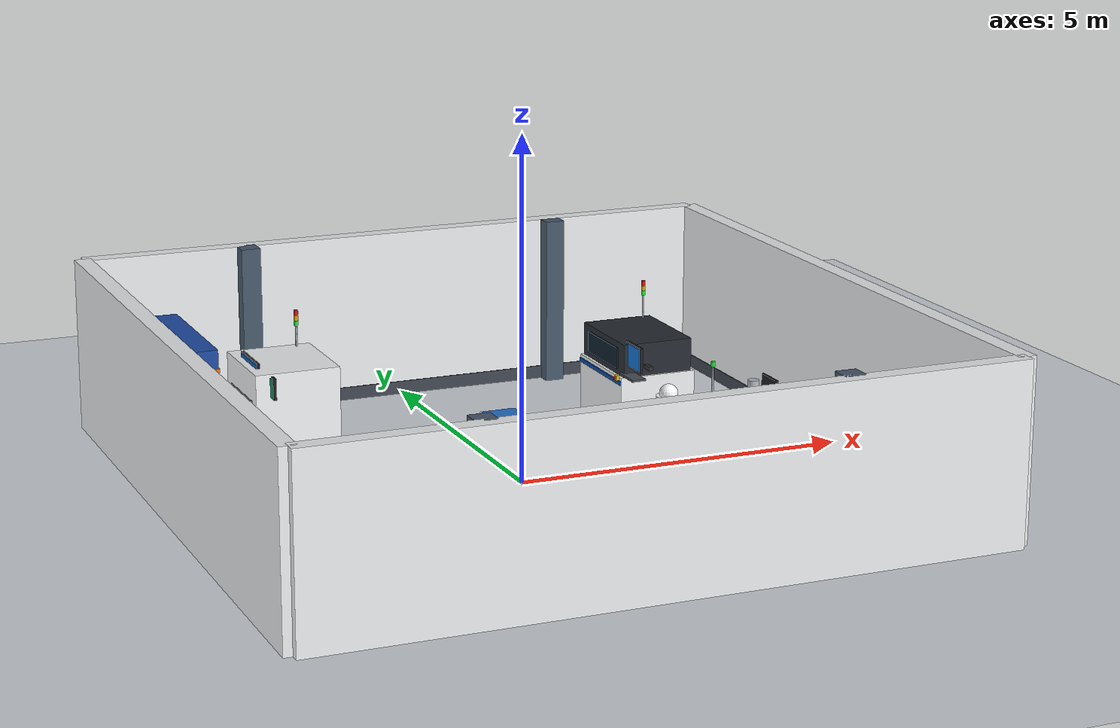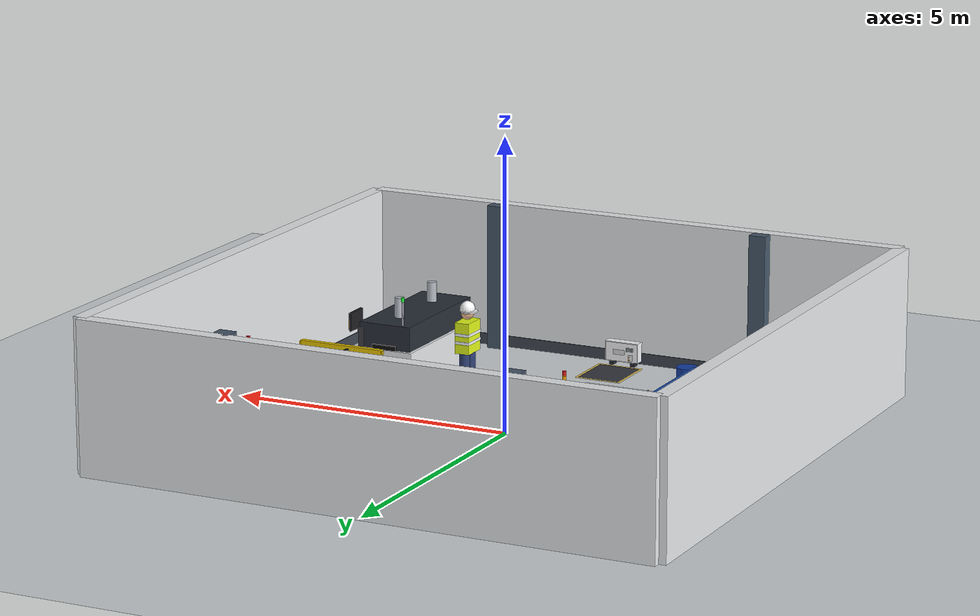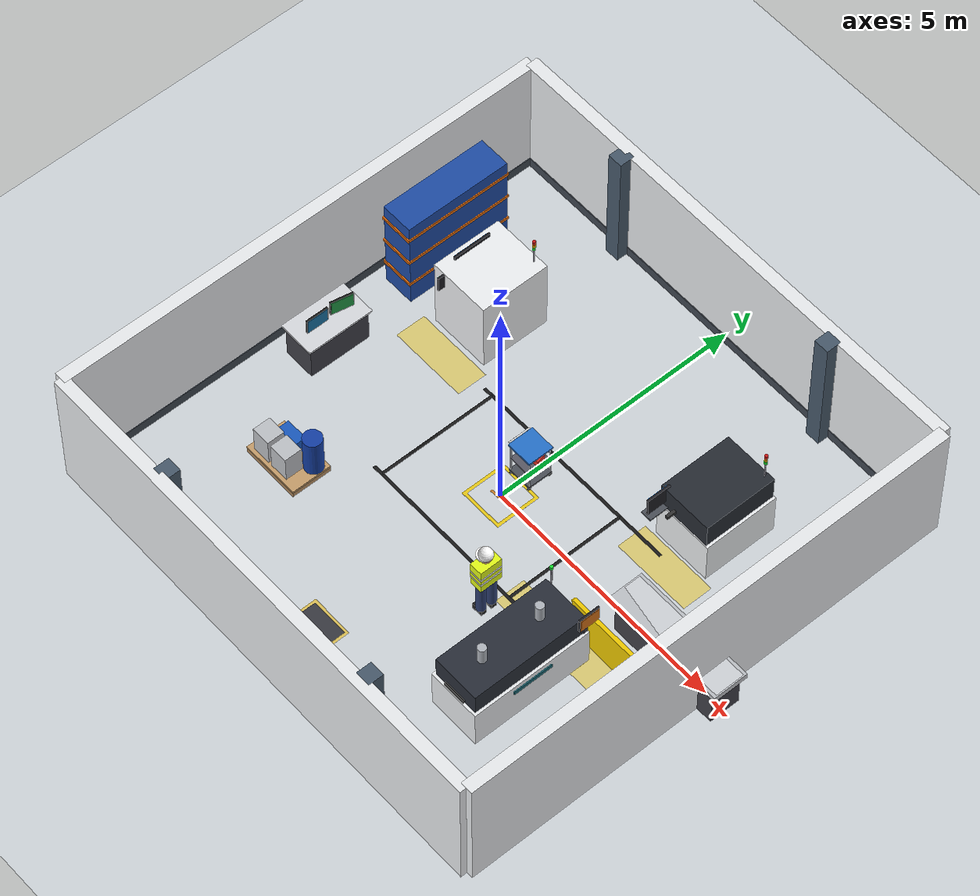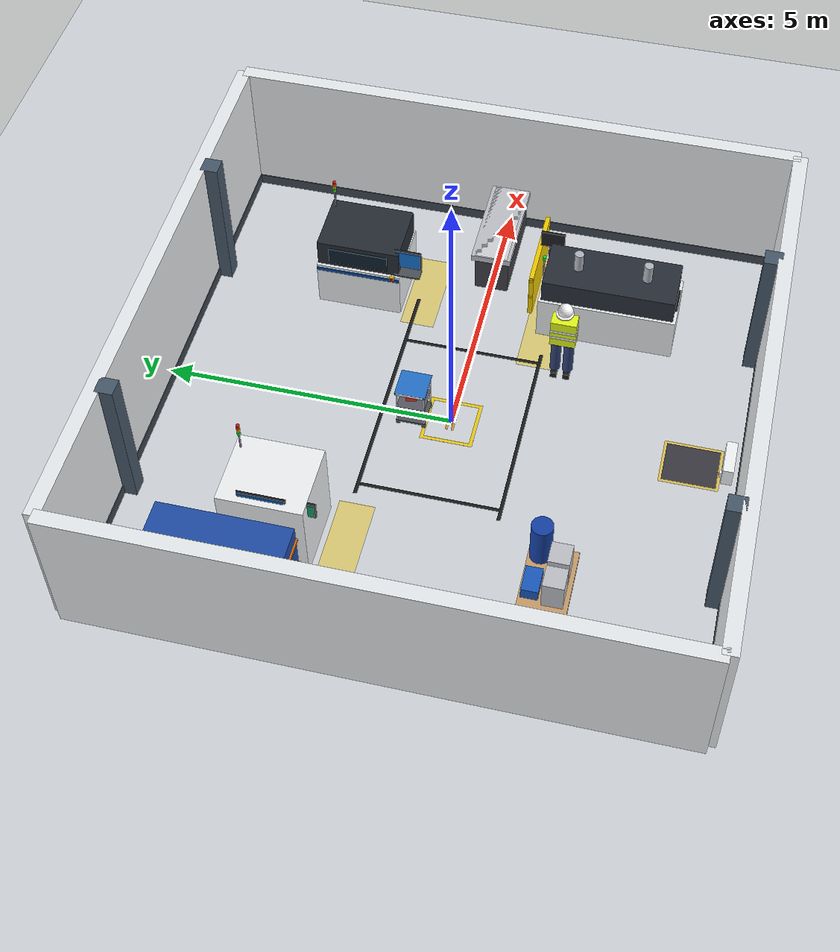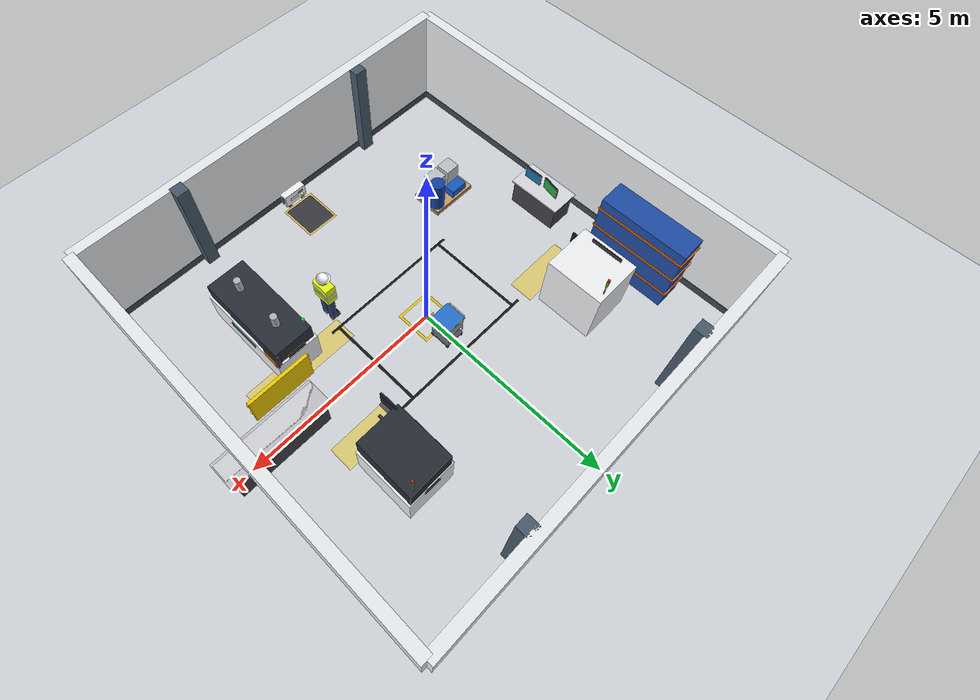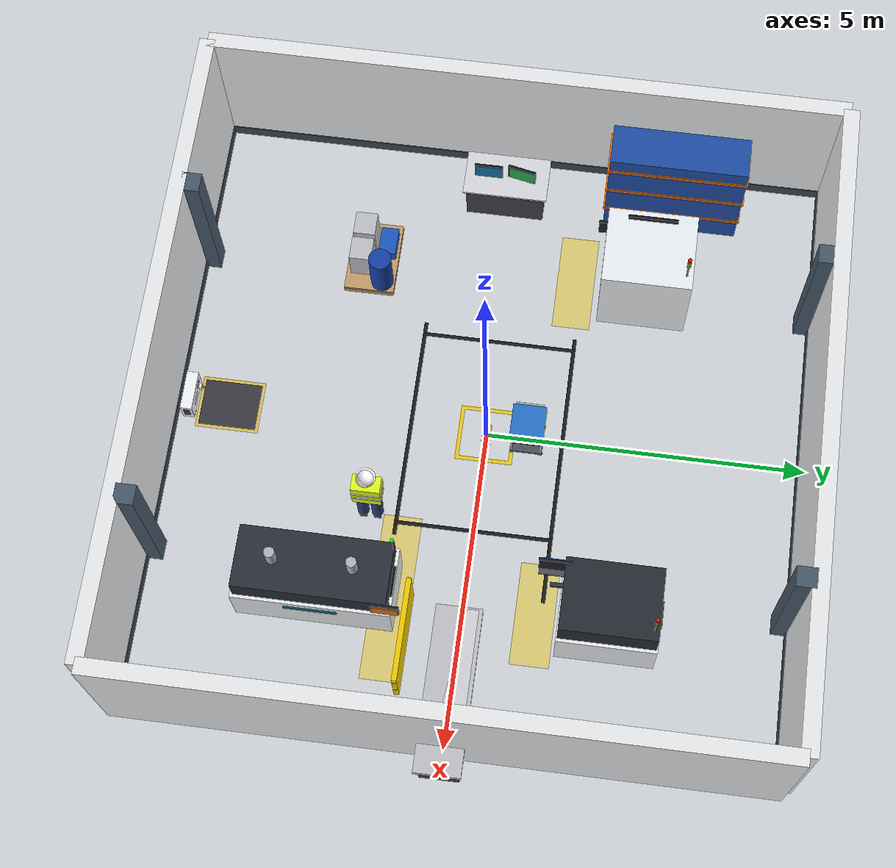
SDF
<?xml version="1.0" ?>
<sdf version="1.6">
  <world name="factory_workshop">

    <!--  ATELIER INDUSTRIEL FUBA - FABRICATION ET INSPECTION DE PCB   -->
    <!--  Projet RAIA 01.26 | Environnement Gazebo réaliste            -->
    <!--  Remplacement des 3 formes géométriques primitives            -->

    <!-- Optimisation graphique pour fluidité maximale sous WSL2 (FPS élevé) -->
    <scene>
      <shadows>false</shadows>
      <grid>true</grid>
    </scene>

    <!-- Plugin ROS2 Gazebo State pour contrôle d'entités dynamiques (/set_entity_state) -->
    <plugin name="gazebo_ros_state" filename="libgazebo_ros_state.so">
      <ros>
        <namespace>/</namespace>
      </ros>
      <update_rate>50.0</update_rate>
    </plugin>

    <!-- Éclairage solaire autonome (sans ombres pour gain FPS) -->
    <light type="directional" name="sun">
      <cast_shadows>false</cast_shadows>
      <pose>0 0 12 0 0 0</pose>
      <diffuse>0.85 0.85 0.88 1</diffuse>
      <specular>0.25 0.25 0.25 1</specular>
      <attenuation>
        <range>1000</range>
        <constant>0.9</constant>
        <linear>0.01</linear>
        <quadratic>0.001</quadratic>
      </attenuation>
      <direction>-0.4 0.2 -0.9</direction>
    </light>

    <!-- Éclairage d'ambiance d'atelier (néons industriels plafonniers) -->
    <light type="point" name="overhead_lamp_1">
      <cast_shadows>false</cast_shadows>
      <pose>-2 2 4.5 0 0 0</pose>
      <diffuse>0.5 0.52 0.55 1</diffuse>
      <specular>0.1 0.1 0.1 1</specular>
      <attenuation>
        <range>20</range>
        <constant>0.5</constant>
        <linear>0.05</linear>
        <quadratic>0.01</quadratic>
      </attenuation>
    </light>

    <light type="point" name="overhead_lamp_2">
      <cast_shadows>false</cast_shadows>
      <pose>2 -2 4.5 0 0 0</pose>
      <diffuse>0.5 0.52 0.55 1</diffuse>
      <specular>0.1 0.1 0.1 1</specular>
      <attenuation>
        <range>20</range>
        <constant>0.5</constant>
        <linear>0.05</linear>
        <quadratic>0.01</quadratic>
      </attenuation>
    </light>

    <!-- Sol de l'atelier : Résine époxy industrielle grise -->
    <model name="ground_plane">
      <static>true</static>
      <link name="link">
        <collision name="collision">
          <geometry>
            <plane>
              <normal>0 0 1</normal>
              <size>100 100</size>
            </plane>
          </geometry>
          <surface>
            <friction>
              <ode>
                <mu>100</mu>
                <mu2>50</mu2>
              </ode>
            </friction>
          </surface>
        </collision>
        <visual name="visual">
          <cast_shadows>false</cast_shadows>
          <geometry>
            <plane>
              <normal>0 0 1</normal>
              <size>100 100</size>
            </plane>
          </geometry>
          <material>
            <ambient>0.82 0.84 0.86 1</ambient>
            <diffuse>0.82 0.84 0.86 1</diffuse>
            <specular>0.3 0.3 0.32 1</specular>
          </material>
        </visual>
      </link>
    </model>

    <!-- Physique ODE optimisée temps réel -->
    <physics type="ode">
      <real_time_update_rate>250.0</real_time_update_rate>
      <max_step_size>0.004</max_step_size>
      <real_time_factor>1.0</real_time_factor>
    </physics>

    <!--  ENCLOS DE L'ATELIER (MURS PERIMETRIQUES 10m x 10m x 2.6m)     -->

    <!-- Mur Nord -->
    <model name="wall_north">
      <static>true</static>
      <pose>0 5 1.3 0 0 0</pose>
      <link name="link">
        <collision name="collision">
          <geometry><box><size>10 0.25 2.6</size></box></geometry>
        </collision>
        <visual name="wall_face">
          <geometry><box><size>10 0.25 2.6</size></box></geometry>
          <material>
            <ambient>0.92 0.93 0.94 1</ambient>
            <diffuse>0.92 0.93 0.94 1</diffuse>
          </material>
        </visual>
        <visual name="baseboard">
          <pose>0 -0.13 -1.2 0 0 0</pose>
          <geometry><box><size>10 0.02 0.2</size></box></geometry>
          <material><ambient>0.25 0.28 0.32 1</ambient><diffuse>0.25 0.28 0.32 1</diffuse></material>
        </visual>
      </link>
    </model>

    <!-- Mur Sud -->
    <model name="wall_south">
      <static>true</static>
      <pose>0 -5 1.3 0 0 0</pose>
      <link name="link">
        <collision name="collision">
          <geometry><box><size>10 0.25 2.6</size></box></geometry>
        </collision>
        <visual name="wall_face">
          <geometry><box><size>10 0.25 2.6</size></box></geometry>
          <material>
            <ambient>0.92 0.93 0.94 1</ambient>
            <diffuse>0.92 0.93 0.94 1</diffuse>
          </material>
        </visual>
        <visual name="baseboard">
          <pose>0 0.13 -1.2 0 0 0</pose>
          <geometry><box><size>10 0.02 0.2</size></box></geometry>
          <material><ambient>0.25 0.28 0.32 1</ambient><diffuse>0.25 0.28 0.32 1</diffuse></material>
        </visual>
      </link>
    </model>

    <!-- Mur Est -->
    <model name="wall_east">
      <static>true</static>
      <pose>5 0 1.3 0 0 0</pose>
      <link name="link">
        <collision name="collision">
          <geometry><box><size>0.25 10 2.6</size></box></geometry>
        </collision>
        <visual name="wall_face">
          <geometry><box><size>0.25 10 2.6</size></box></geometry>
          <material>
            <ambient>0.92 0.93 0.94 1</ambient>
            <diffuse>0.92 0.93 0.94 1</diffuse>
          </material>
        </visual>
        <visual name="baseboard">
          <pose>-0.13 0 -1.2 0 0 0</pose>
          <geometry><box><size>0.02 10 0.2</size></box></geometry>
          <material><ambient>0.25 0.28 0.32 1</ambient><diffuse>0.25 0.28 0.32 1</diffuse></material>
        </visual>
      </link>
    </model>

    <!-- Mur Ouest -->
    <model name="wall_west">
      <static>true</static>
      <pose>-5 0 1.3 0 0 0</pose>
      <link name="link">
        <collision name="collision">
          <geometry><box><size>0.25 10 2.6</size></box></geometry>
        </collision>
        <visual name="wall_face">
          <geometry><box><size>0.25 10 2.6</size></box></geometry>
          <material>
            <ambient>0.92 0.93 0.94 1</ambient>
            <diffuse>0.92 0.93 0.94 1</diffuse>
          </material>
        </visual>
        <visual name="baseboard">
          <pose>0.13 0 -1.2 0 0 0</pose>
          <geometry><box><size>0.02 10 0.2</size></box></geometry>
          <material><ambient>0.25 0.28 0.32 1</ambient><diffuse>0.25 0.28 0.32 1</diffuse></material>
        </visual>
      </link>
    </model>

    <!-- Piliers structuraux IPN de l'atelier -->
    <model name="pillar_nw">
      <static>true</static>
      <pose>-2.5 4.8 1.3 0 0 0</pose>
      <link name="link">
        <collision name="collision"><geometry><box><size>0.3 0.3 2.6</size></box></geometry></collision>
        <visual name="visual">
          <geometry><box><size>0.3 0.3 2.6</size></box></geometry>
          <material><ambient>0.28 0.35 0.42 1</ambient><diffuse>0.28 0.35 0.42 1</diffuse></material>
        </visual>
      </link>
    </model>

    <model name="pillar_ne">
      <static>true</static>
      <pose>2.5 4.8 1.3 0 0 0</pose>
      <link name="link">
        <collision name="collision"><geometry><box><size>0.3 0.3 2.6</size></box></geometry></collision>
        <visual name="visual">
          <geometry><box><size>0.3 0.3 2.6</size></box></geometry>
          <material><ambient>0.28 0.35 0.42 1</ambient><diffuse>0.28 0.35 0.42 1</diffuse></material>
        </visual>
      </link>
    </model>

    <model name="pillar_sw">
      <static>true</static>
      <pose>-2.5 -4.8 1.3 0 0 0</pose>
      <link name="link">
        <collision name="collision"><geometry><box><size>0.3 0.3 2.6</size></box></geometry></collision>
        <visual name="visual">
          <geometry><box><size>0.3 0.3 2.6</size></box></geometry>
          <material><ambient>0.28 0.35 0.42 1</ambient><diffuse>0.28 0.35 0.42 1</diffuse></material>
        </visual>
      </link>
    </model>

    <model name="pillar_se">
      <static>true</static>
      <pose>2.5 -4.8 1.3 0 0 0</pose>
      <link name="link">
        <collision name="collision"><geometry><box><size>0.3 0.3 2.6</size></box></geometry></collision>
        <visual name="visual">
          <geometry><box><size>0.3 0.3 2.6</size></box></geometry>
          <material><ambient>0.28 0.35 0.42 1</ambient><diffuse>0.28 0.35 0.42 1</diffuse></material>
        </visual>
      </link>
    </model>

    <!--  STATION 1 : SERIGRAPHIE & CHARGEMENT (MPM MOMENTUM II ELITE) -->
    <!--  Remplace l'ancien obstacle rectangulaire pcb_station_1        -->
    <!--  Photo Fig. 20 (page 43 du rapport RAIA)                      -->
    <model name="station_mpm_momentum_serigraphie">
      <static>true</static>
      <pose>2.8 2.2 0 0 0 -1.5708</pose>
      <link name="link">
        <!-- Boîte de collision globale exacte pour le LiDAR et la physique -->
        <collision name="collision_base">
          <pose>0 0 0.72 0 0 0</pose>
          <geometry><box><size>1.5 1.25 1.45</size></box></geometry>
        </collision>

        <!-- Bâti inférieur machine blanc industriel -->
        <visual name="base_chassis">
          <pose>0 0 0.45 0 0 0</pose>
          <geometry><box><size>1.5 1.2 0.9</size></box></geometry>
          <material><ambient>0.93 0.94 0.95 1</ambient><diffuse>0.93 0.94 0.95 1</diffuse></material>
        </visual>

        <!-- Capot supérieur avec chanfrein noir/anthracite -->
        <visual name="upper_hood">
          <pose>0 0 1.15 0 0 0</pose>
          <geometry><box><size>1.46 1.1 0.5</size></box></geometry>
          <material><ambient>0.15 0.17 0.2 1</ambient><diffuse>0.15 0.17 0.2 1</diffuse></material>
        </visual>

        <!-- Fenêtre d'inspection sérigraphie en verre teinté -->
        <visual name="inspection_glass">
          <pose>0 -0.56 1.15 0 0 0</pose>
          <geometry><box><size>1.05 0.03 0.32</size></box></geometry>
          <material><ambient>0.05 0.12 0.18 1</ambient><diffuse>0.05 0.12 0.18 1</diffuse><specular>0.8 0.8 0.9 1</specular></material>
        </visual>

        <!-- Bandeau d'accent bleu MPM -->
        <visual name="mpm_accent_stripe">
          <pose>0 -0.61 0.82 0 0 0</pose>
          <geometry><box><size>1.48 0.02 0.06</size></box></geometry>
          <material><ambient>0.05 0.3 0.65 1</ambient><diffuse>0.05 0.3 0.65 1</diffuse></material>
        </visual>

        <!-- Console opérateur latérale (bras support) -->
        <visual name="screen_arm">
          <pose>0.82 -0.2 1.05 0 0 0</pose>
          <geometry><box><size>0.2 0.06 0.06</size></box></geometry>
          <material><ambient>0.2 0.2 0.2 1</ambient><diffuse>0.2 0.2 0.2 1</diffuse></material>
        </visual>

        <!-- Écran de contrôle MPM Momentum -->
        <visual name="operator_screen_frame">
          <pose>0.88 -0.45 1.25 0 0 0</pose>
          <geometry><box><size>0.48 0.04 0.38</size></box></geometry>
          <material><ambient>0.12 0.12 0.14 1</ambient><diffuse>0.12 0.12 0.14 1</diffuse></material>
        </visual>
        <visual name="operator_screen_display">
          <pose>0.88 -0.48 1.25 0 0 0</pose>
          <geometry><box><size>0.44 0.01 0.34</size></box></geometry>
          <material><ambient>0.08 0.45 0.82 1</ambient><diffuse>0.08 0.45 0.82 1</diffuse><emissive>0.05 0.2 0.4 1</emissive></material>
        </visual>
        <visual name="keyboard_tray">
          <pose>0.88 -0.48 0.95 0 0 0</pose>
          <geometry><box><size>0.46 0.22 0.03</size></box></geometry>
          <material><ambient>0.3 0.32 0.35 1</ambient><diffuse>0.3 0.32 0.35 1</diffuse></material>
        </visual>

        <!-- Bouton Arrêt d'Urgence (E-stop) -->
        <visual name="estop_box">
          <pose>0.62 -0.62 0.88 0 0 0</pose>
          <geometry><box><size>0.08 0.04 0.08</size></box></geometry>
          <material><ambient>0.95 0.8 0.0 1</ambient><diffuse>0.95 0.8 0.0 1</diffuse></material>
        </visual>
        <visual name="estop_mushroom">
          <pose>0.62 -0.65 0.88 1.5708 0 0</pose>
          <geometry><cylinder><radius>0.025</radius><length>0.03</length></cylinder></geometry>
          <material><ambient>0.85 0.05 0.05 1</ambient><diffuse>0.85 0.05 0.05 1</diffuse></material>
        </visual>

        <!-- Colonne lumineuse Andon (Mât) -->
        <visual name="andon_pole">
          <pose>-0.65 0.4 1.6 0 0 0</pose>
          <geometry><cylinder><radius>0.015</radius><length>0.4</length></cylinder></geometry>
          <material><ambient>0.6 0.6 0.65 1</ambient><diffuse>0.6 0.6 0.65 1</diffuse></material>
        </visual>
        <!-- Andon Rouge -->
        <visual name="andon_red">
          <pose>-0.65 0.4 1.95 0 0 0</pose>
          <geometry><cylinder><radius>0.03</radius><length>0.07</length></cylinder></geometry>
          <material><ambient>0.8 0.1 0.1 1</ambient><diffuse>0.8 0.1 0.1 1</diffuse></material>
        </visual>
        <!-- Andon Orange -->
        <visual name="andon_amber">
          <pose>-0.65 0.4 1.87 0 0 0</pose>
          <geometry><cylinder><radius>0.03</radius><length>0.07</length></cylinder></geometry>
          <material><ambient>0.9 0.6 0.0 1</ambient><diffuse>0.9 0.6 0.0 1</diffuse></material>
        </visual>
        <!-- Andon Vert actif -->
        <visual name="andon_green">
          <pose>-0.65 0.4 1.79 0 0 0</pose>
          <geometry><cylinder><radius>0.03</radius><length>0.07</length></cylinder></geometry>
          <material><ambient>0.1 0.9 0.2 1</ambient><diffuse>0.1 0.9 0.2 1</diffuse><emissive>0.2 0.8 0.3 1</emissive></material>
        </visual>

        <!-- Convoyeur d'interface de transfert PCB -->
        <visual name="pcb_input_slot">
          <pose>-0.76 0 0.85 0 0 0</pose>
          <geometry><box><size>0.03 0.4 0.1</size></box></geometry>
          <material><ambient>0.05 0.05 0.05 1</ambient><diffuse>0.05 0.05 0.05 1</diffuse></material>
        </visual>
      </link>
    </model>

    <!--  STATION 2 : TESTEUR SONDES MOBILES & VISION IA (SPEA 4050)   -->
    <!--  Remplace l'ancien obstacle carré/rectangle pcb_station_2      -->
    <!--  Banc d'inspection optique temps réel YOLOv8 (rapport RAIA)    -->
    <model name="station_spea_4050_testeur_ia">
      <static>true</static>
      <pose>-2.8 2.2 0 0 0 -1.5708</pose>
      <link name="link">
        <!-- Boîte de collision globale pour physique et LiDAR -->
        <collision name="collision_base">
          <pose>0 0 0.8 0 0 0</pose>
          <geometry><box><size>1.5 1.35 1.6</size></box></geometry>
        </collision>

        <!-- Bâti vertical principal SPEA 4050 blanc crème -->
        <visual name="spea_main_body">
          <pose>0 0 0.77 0 0 0</pose>
          <geometry><box><size>1.4 1.25 1.55</size></box></geometry>
          <material><ambient>0.94 0.95 0.96 1</ambient><diffuse>0.94 0.95 0.96 1</diffuse></material>
        </visual>

        <!-- Chambre centrale de test à sondes mobiles -->
        <visual name="test_chamber_recess">
          <pose>0 -0.55 0.8 0 0 0</pose>
          <geometry><box><size>1.05 0.16 0.65</size></box></geometry>
          <material><ambient>0.12 0.14 0.16 1</ambient><diffuse>0.12 0.14 0.16 1</diffuse></material>
        </visual>

        <!-- Fixture / Plateau de circuit imprimé sous test (vert PCB) -->
        <visual name="pcb_under_test">
          <pose>0 -0.45 0.65 0 0 0</pose>
          <geometry><box><size>0.6 0.35 0.03</size></box></geometry>
          <material><ambient>0.1 0.55 0.25 1</ambient><diffuse>0.1 0.55 0.25 1</diffuse></material>
        </visual>

        <!-- Pont de mesure robotisé (portique sondes volantes) -->
        <visual name="flying_probes_gantry">
          <pose>0 -0.45 0.95 0 0 0</pose>
          <geometry><box><size>0.85 0.05 0.05</size></box></geometry>
          <material><ambient>0.7 0.7 0.75 1</ambient><diffuse>0.7 0.7 0.75 1</diffuse></material>
        </visual>

        <!-- Caméra industrielle d'inspection optique (IA YOLOv8) -->
        <visual name="vision_ai_camera">
          <pose>0 -0.45 1.05 0 0 0</pose>
          <geometry><box><size>0.08 0.1 0.1</size></box></geometry>
          <material><ambient>0.1 0.1 0.12 1</ambient><diffuse>0.1 0.1 0.12 1</diffuse></material>
        </visual>
        <visual name="camera_lens">
          <pose>0 -0.45 0.98 0 0 0</pose>
          <geometry><cylinder><radius>0.02</radius><length>0.04</length></cylinder></geometry>
          <material><ambient>0.2 0.3 0.4 1</ambient><diffuse>0.2 0.3 0.4 1</diffuse></material>
        </visual>

        <!-- Grand écran principal de test SPEA 4050 -->
        <visual name="main_screen_frame">
          <pose>0 -0.48 1.38 0 0 0</pose>
          <geometry><box><size>0.78 0.04 0.48</size></box></geometry>
          <material><ambient>0.1 0.1 0.12 1</ambient><diffuse>0.1 0.1 0.12 1</diffuse></material>
        </visual>
        <visual name="main_screen_display">
          <pose>0 -0.51 1.38 0 0 0</pose>
          <geometry><box><size>0.74 0.01 0.44</size></box></geometry>
          <material><ambient>0.05 0.4 0.75 1</ambient><diffuse>0.05 0.4 0.75 1</diffuse><emissive>0.05 0.25 0.5 1</emissive></material>
        </visual>

        <!-- Écran secondaire supervision IA (Défauts YOLOv8 503/521/522) -->
        <visual name="aux_screen_frame">
          <pose>0.65 -0.38 1.35 0 0 0</pose>
          <geometry><box><size>0.36 0.04 0.32</size></box></geometry>
          <material><ambient>0.12 0.12 0.14 1</ambient><diffuse>0.12 0.12 0.14 1</diffuse></material>
        </visual>
        <visual name="aux_screen_display">
          <pose>0.65 -0.41 1.35 0 0 0</pose>
          <geometry><box><size>0.32 0.01 0.28</size></box></geometry>
          <material><ambient>0.1 0.6 0.4 1</ambient><diffuse>0.1 0.6 0.4 1</diffuse><emissive>0.05 0.3 0.2 1</emissive></material>
        </visual>

        <!-- Colonne lumineuse Andon SPEA -->
        <visual name="andon_pole">
          <pose>-0.6 0.4 1.7 0 0 0</pose>
          <geometry><cylinder><radius>0.015</radius><length>0.4</length></cylinder></geometry>
          <material><ambient>0.6 0.6 0.65 1</ambient><diffuse>0.6 0.6 0.65 1</diffuse></material>
        </visual>
        <visual name="andon_red">
          <pose>-0.6 0.4 2.05 0 0 0</pose>
          <geometry><cylinder><radius>0.03</radius><length>0.07</length></cylinder></geometry>
          <material><ambient>0.8 0.1 0.1 1</ambient><diffuse>0.8 0.1 0.1 1</diffuse></material>
        </visual>
        <visual name="andon_amber">
          <pose>-0.6 0.4 1.97 0 0 0</pose>
          <geometry><cylinder><radius>0.03</radius><length>0.07</length></cylinder></geometry>
          <material><ambient>0.9 0.6 0.0 1</ambient><diffuse>0.9 0.6 0.0 1</diffuse></material>
        </visual>
        <visual name="andon_green">
          <pose>-0.6 0.4 1.89 0 0 0</pose>
          <geometry><cylinder><radius>0.03</radius><length>0.07</length></cylinder></geometry>
          <material><ambient>0.1 0.9 0.2 1</ambient><diffuse>0.1 0.9 0.2 1</diffuse><emissive>0.2 0.8 0.3 1</emissive></material>
        </visual>

        <!-- Bouton Arrêt d'Urgence frontal -->
        <visual name="estop_box">
          <pose>-0.58 -0.64 0.9 0 0 0</pose>
          <geometry><box><size>0.08 0.04 0.08</size></box></geometry>
          <material><ambient>0.95 0.8 0.0 1</ambient><diffuse>0.95 0.8 0.0 1</diffuse></material>
        </visual>
        <visual name="estop_button">
          <pose>-0.58 -0.67 0.9 1.5708 0 0</pose>
          <geometry><cylinder><radius>0.025</radius><length>0.03</length></cylinder></geometry>
          <material><ambient>0.85 0.05 0.05 1</ambient><diffuse>0.85 0.05 0.05 1</diffuse></material>
        </visual>
      </link>
    </model>

    <!--  STATION 3 : FOUR DE REFUSION & TRAITEMENT THERMIQUE (I.C.T)  -->
    <!--  Remplace l'ancienne station et complète la ligne FUBA         -->
    <!--  Four Lead-Free de durcissement et refusion (page 42 rapport)  -->
    <model name="station_ict_four_refusion">
      <static>true</static>
      <pose>2.8 -2.2 0 0 0 1.5708</pose>
      <link name="link">
        <!-- Collision englobante pour physique et LiDAR -->
        <collision name="collision_base">
          <pose>0 0 0.72 0 0 0</pose>
          <geometry><box><size>2.5 1.15 1.45</size></box></geometry>
        </collision>

        <!-- Bâti inférieur en acier lourd ivoire/blanc -->
        <visual name="lower_body">
          <pose>0 0 0.42 0 0 0</pose>
          <geometry><box><size>2.4 1.05 0.84</size></box></geometry>
          <material><ambient>0.92 0.93 0.94 1</ambient><diffuse>0.92 0.93 0.94 1</diffuse></material>
        </visual>

        <!-- Capot supérieur tunnel thermique bombé noir graphite -->
        <visual name="tunnel_hood">
          <pose>0 0 1.05 0 0 0</pose>
          <geometry><box><size>2.3 0.95 0.45</size></box></geometry>
          <material><ambient>0.16 0.18 0.22 1</ambient><diffuse>0.16 0.18 0.22 1</diffuse></material>
        </visual>

        <!-- Fentes de tunnel de convoyage (entrée / sortie) -->
        <visual name="tunnel_inlet">
          <pose>-1.16 0 0.85 0 0 0</pose>
          <geometry><box><size>0.06 0.45 0.14</size></box></geometry>
          <material><ambient>0.05 0.05 0.05 1</ambient><diffuse>0.05 0.05 0.05 1</diffuse></material>
        </visual>
        <visual name="tunnel_outlet">
          <pose>1.16 0 0.85 0 0 0</pose>
          <geometry><box><size>0.06 0.45 0.14</size></box></geometry>
          <material><ambient>0.05 0.05 0.05 1</ambient><diffuse>0.05 0.05 0.05 1</diffuse></material>
        </visual>

        <!-- Cheminées d'extraction des vapeurs de soudure -->
        <visual name="chimney_1">
          <pose>-0.6 0 1.45 0 0 0</pose>
          <geometry><cylinder><radius>0.08</radius><length>0.35</length></cylinder></geometry>
          <material><ambient>0.7 0.72 0.75 1</ambient><diffuse>0.7 0.72 0.75 1</diffuse></material>
        </visual>
        <visual name="chimney_2">
          <pose>0.6 0 1.45 0 0 0</pose>
          <geometry><cylinder><radius>0.08</radius><length>0.35</length></cylinder></geometry>
          <material><ambient>0.7 0.72 0.75 1</ambient><diffuse>0.7 0.72 0.75 1</diffuse></material>
        </visual>

        <!-- Pupitre de supervision thermique I.C.T -->
        <visual name="control_stand">
          <pose>1.15 -0.45 0.95 0 0 0</pose>
          <geometry><box><size>0.08 0.08 0.5</size></box></geometry>
          <material><ambient>0.25 0.25 0.28 1</ambient><diffuse>0.25 0.25 0.28 1</diffuse></material>
        </visual>
        <visual name="control_screen_frame">
          <pose>1.15 -0.55 1.3 0 0 0</pose>
          <geometry><box><size>0.42 0.04 0.32</size></box></geometry>
          <material><ambient>0.12 0.12 0.14 1</ambient><diffuse>0.12 0.12 0.14 1</diffuse></material>
        </visual>
        <visual name="control_screen_display">
          <pose>1.15 -0.58 1.3 0 0 0</pose>
          <geometry><box><size>0.38 0.01 0.28</size></box></geometry>
          <material><ambient>0.85 0.45 0.1 1</ambient><diffuse>0.85 0.45 0.1 1</diffuse><emissive>0.35 0.15 0.02 1</emissive></material>
        </visual>

        <!-- Colonne lumineuse Andon I.C.T -->
        <visual name="andon_pole">
          <pose>1.15 0.35 1.5 0 0 0</pose>
          <geometry><cylinder><radius>0.015</radius><length>0.4</length></cylinder></geometry>
          <material><ambient>0.6 0.6 0.65 1</ambient><diffuse>0.6 0.6 0.65 1</diffuse></material>
        </visual>
        <visual name="andon_green">
          <pose>1.15 0.35 1.75 0 0 0</pose>
          <geometry><cylinder><radius>0.03</radius><length>0.07</length></cylinder></geometry>
          <material><ambient>0.1 0.9 0.2 1</ambient><diffuse>0.1 0.9 0.2 1</diffuse><emissive>0.2 0.8 0.3 1</emissive></material>
        </visual>

        <!-- Logo / Badge I.C.T LEAD-FREE -->
        <visual name="lead_free_band">
          <pose>0 -0.54 0.7 0 0 0</pose>
          <geometry><box><size>0.8 0.02 0.08</size></box></geometry>
          <material><ambient>0.1 0.4 0.45 1</ambient><diffuse>0.1 0.4 0.45 1</diffuse></material>
        </visual>
      </link>
    </model>

    <!--  ZONE LOGISTIQUE : PALETTE EUROPE, MAGASINS PCB & FUTS         -->
    <!--  Remplace l'ancien cylindre abstrait (pallet_obstacle)         -->
    <!--  Composants CMS et racks de circuits imprimés prêts au chargement -->
    <model name="zone_logistique_palette_pcb">
      <static>true</static>
      <pose>-2.8 -2.2 0 0 0 0</pose>
      <link name="link">
        <!-- Collision globale pour la palette et son chargement -->
        <collision name="collision_all">
          <pose>0 0 0.5 0 0 0</pose>
          <geometry><box><size>1.35 1.05 1.0</size></box></geometry>
        </collision>

        <!-- Palette bois Euro (semelles) -->
        <visual name="pallet_runners">
          <pose>0 0 0.05 0 0 0</pose>
          <geometry><box><size>1.2 0.8 0.1</size></box></geometry>
          <material><ambient>0.72 0.56 0.38 1</ambient><diffuse>0.72 0.56 0.38 1</diffuse></material>
        </visual>
        <!-- Planches supérieures de la palette -->
        <visual name="pallet_top_deck">
          <pose>0 0 0.12 0 0 0</pose>
          <geometry><box><size>1.2 0.8 0.04</size></box></geometry>
          <material><ambient>0.78 0.62 0.42 1</ambient><diffuse>0.78 0.62 0.42 1</diffuse></material>
        </visual>

        <!-- Magasin vertical de stockage PCB 1 (Aluminium anodisé + circuits verts) -->
        <visual name="pcb_rack_1">
          <pose>-0.3 -0.15 0.42 0 0 0</pose>
          <geometry><box><size>0.38 0.35 0.55</size></box></geometry>
          <material><ambient>0.75 0.76 0.78 1</ambient><diffuse>0.75 0.76 0.78 1</diffuse></material>
        </visual>
        <visual name="pcb_cards_1">
          <pose>-0.3 -0.15 0.42 0 0 0</pose>
          <geometry><box><size>0.34 0.31 0.5</size></box></geometry>
          <material><ambient>0.12 0.55 0.22 1</ambient><diffuse>0.12 0.55 0.22 1</diffuse></material>
        </visual>

        <!-- Magasin vertical de stockage PCB 2 -->
        <visual name="pcb_rack_2">
          <pose>0.15 -0.15 0.42 0 0 0</pose>
          <geometry><box><size>0.38 0.35 0.55</size></box></geometry>
          <material><ambient>0.75 0.76 0.78 1</ambient><diffuse>0.75 0.76 0.78 1</diffuse></material>
        </visual>
        <visual name="pcb_cards_2">
          <pose>0.15 -0.15 0.42 0 0 0</pose>
          <geometry><box><size>0.34 0.31 0.5</size></box></geometry>
          <material><ambient>0.12 0.55 0.22 1</ambient><diffuse>0.12 0.55 0.22 1</diffuse></material>
        </visual>

        <!-- Bac gerbable de composants CMS (bleu industriel) -->
        <visual name="smd_parts_tote">
          <pose>-0.2 0.22 0.26 0 0 0</pose>
          <geometry><box><size>0.45 0.28 0.22</size></box></geometry>
          <material><ambient>0.1 0.35 0.75 1</ambient><diffuse>0.1 0.35 0.75 1</diffuse></material>
        </visual>

        <!-- Fût de solvant / flux de dégraissage PCB (Bleu chimique) -->
        <visual name="chemical_drum_1">
          <pose>0.42 0.2 0.54 0 0 0</pose>
          <geometry><cylinder><radius>0.18</radius><length>0.8</length></cylinder></geometry>
          <material><ambient>0.08 0.25 0.65 1</ambient><diffuse>0.08 0.25 0.65 1</diffuse></material>
        </visual>
      </link>
    </model>

    <!--  POSTE DE CONTROLE QUALITE & BUREAU DE SUPERVISION FLASK      -->
    <!--  Interface web Flask & suivi des détections (Chapitre 3)       -->
    <model name="supervision_desk_quality">
      <static>true</static>
      <pose>-4.2 -0.2 0 0 0 0</pose>
      <link name="link">
        <collision name="collision">
          <pose>0 0 0.65 0 0 0</pose>
          <geometry><box><size>0.8 1.4 1.3</size></box></geometry>
        </collision>

        <!-- Plateau de table d'atelier -->
        <visual name="table_top">
          <pose>0 0 0.74 0 0 0</pose>
          <geometry><box><size>0.75 1.35 0.04</size></box></geometry>
          <material><ambient>0.85 0.86 0.88 1</ambient><diffuse>0.85 0.86 0.88 1</diffuse></material>
        </visual>

        <!-- Pieds métalliques tubulaires -->
        <visual name="table_legs">
          <pose>0 0 0.36 0 0 0</pose>
          <geometry><box><size>0.65 1.25 0.72</size></box></geometry>
          <material><ambient>0.25 0.25 0.28 1</ambient><diffuse>0.25 0.25 0.28 1</diffuse></material>
        </visual>

        <!-- Moniteur 1 : Dashboard Flask (supervision & traçabilité) -->
        <visual name="monitor1_frame">
          <pose>0.1 -0.28 1.05 0 0 0</pose>
          <geometry><box><size>0.04 0.45 0.32</size></box></geometry>
          <material><ambient>0.1 0.1 0.1 1</ambient><diffuse>0.1 0.1 0.1 1</diffuse></material>
        </visual>
        <visual name="monitor1_screen">
          <pose>0.12 -0.28 1.05 0 0 0</pose>
          <geometry><box><size>0.01 0.42 0.29</size></box></geometry>
          <material><ambient>0.1 0.45 0.65 1</ambient><diffuse>0.1 0.45 0.65 1</diffuse><emissive>0.05 0.2 0.3 1</emissive></material>
        </visual>

        <!-- Moniteur 2 : Flux vidéo direct YOLOv8 & statistiques -->
        <visual name="monitor2_frame">
          <pose>0.1 0.25 1.05 0 0 -0.2</pose>
          <geometry><box><size>0.04 0.45 0.32</size></box></geometry>
          <material><ambient>0.1 0.1 0.1 1</ambient><diffuse>0.1 0.1 0.1 1</diffuse></material>
        </visual>
        <visual name="monitor2_screen">
          <pose>0.12 0.25 1.05 0 0 -0.2</pose>
          <geometry><box><size>0.01 0.42 0.29</size></box></geometry>
          <material><ambient>0.15 0.65 0.3 1</ambient><diffuse>0.15 0.65 0.3 1</diffuse><emissive>0.08 0.3 0.15 1</emissive></material>
        </visual>

        <!-- Tour PC de supervision -->
        <visual name="pc_tower">
          <pose>-0.2 0.45 0.35 0 0 0</pose>
          <geometry><box><size>0.4 0.18 0.38</size></box></geometry>
          <material><ambient>0.15 0.15 0.18 1</ambient><diffuse>0.15 0.15 0.18 1</diffuse></material>
        </visual>
      </link>
    </model>

    <!--  RAYONNAGE INDUSTRIEL DE STOCKAGE (WAREHOUSE RACK)            -->
    <!--  Stockage des matières premières et lots de circuits PCB       -->
    <model name="industrial_storage_rack">
      <static>true</static>
      <pose>-4.3 2.5 0 0 0 0</pose>
      <link name="link">
        <collision name="collision">
          <pose>0 0 1.0 0 0 0</pose>
          <geometry><box><size>0.7 2.2 2.0</size></box></geometry>
        </collision>

        <!-- Montants verticaux bleus -->
        <visual name="uprights">
          <pose>0 0 1.0 0 0 0</pose>
          <geometry><box><size>0.65 2.15 2.0</size></box></geometry>
          <material><ambient>0.12 0.3 0.65 1</ambient><diffuse>0.12 0.3 0.65 1</diffuse></material>
        </visual>
        <!-- Lisses horizontales de charge orange industriel -->
        <visual name="shelf_beam_1">
          <pose>0 0 0.5 0 0 0</pose>
          <geometry><box><size>0.68 2.2 0.06</size></box></geometry>
          <material><ambient>0.95 0.45 0.05 1</ambient><diffuse>0.95 0.45 0.05 1</diffuse></material>
        </visual>
        <visual name="shelf_beam_2">
          <pose>0 0 1.1 0 0 0</pose>
          <geometry><box><size>0.68 2.2 0.06</size></box></geometry>
          <material><ambient>0.95 0.45 0.05 1</ambient><diffuse>0.95 0.45 0.05 1</diffuse></material>
        </visual>
        <visual name="shelf_beam_3">
          <pose>0 0 1.7 0 0 0</pose>
          <geometry><box><size>0.68 2.2 0.06</size></box></geometry>
          <material><ambient>0.95 0.45 0.05 1</ambient><diffuse>0.95 0.45 0.05 1</diffuse></material>
        </visual>

        <!-- Boîtes de composants stockées sur les étagères -->
        <visual name="stored_box_1">
          <pose>0 -0.5 0.75 0 0 0</pose>
          <geometry><box><size>0.5 0.4 0.4</size></box></geometry>
          <material><ambient>0.7 0.55 0.35 1</ambient><diffuse>0.7 0.55 0.35 1</diffuse></material>
        </visual>
        <visual name="stored_box_2">
          <pose>0 0.4 0.75 0 0 0</pose>
          <geometry><box><size>0.5 0.5 0.4</size></box></geometry>
          <material><ambient>0.15 0.4 0.6 1</ambient><diffuse>0.15 0.4 0.6 1</diffuse></material>
        </visual>
      </link>
    </model>

    <!--  CONVOYEUR INDUSTRIEL DE TRANSFERT PCB A ROULEAUX             -->
    <!--  Convoyeur évoqué aux pages 24-25 du rapport RAIA              -->
    <model name="conveyor_roller_table">
      <static>true</static>
      <pose>4.3 0 0 0 0 1.5708</pose>
      <link name="link">
        <collision name="collision">
          <pose>0 0 0.45 0 0 0</pose>
          <geometry><box><size>0.75 2.6 0.9</size></box></geometry>
        </collision>

        <!-- Profilés latéraux en aluminium -->
        <visual name="side_rails">
          <pose>0 0 0.82 0 0 0</pose>
          <geometry><box><size>0.7 2.5 0.12</size></box></geometry>
          <material><ambient>0.75 0.76 0.78 1</ambient><diffuse>0.75 0.76 0.78 1</diffuse></material>
        </visual>
        <!-- Rouleaux métalliques galvanisés -->
        <visual name="rollers_surface">
          <pose>0 0 0.86 0 0 0</pose>
          <geometry><box><size>0.58 2.45 0.04</size></box></geometry>
          <material><ambient>0.82 0.83 0.85 1</ambient><diffuse>0.82 0.83 0.85 1</diffuse></material>
        </visual>
        <!-- Pieds réglables et longerons -->
        <visual name="conveyor_legs">
          <pose>0 0 0.38 0 0 0</pose>
          <geometry><box><size>0.6 2.3 0.76</size></box></geometry>
          <material><ambient>0.25 0.25 0.28 1</ambient><diffuse>0.25 0.25 0.28 1</diffuse></material>
        </visual>
      </link>
    </model>

    <!--  BARRIERES DE PROTECTION INDUSTRIELLE (SECURITE ATELIER)      -->
    <model name="safety_barrier_east">
      <static>true</static>
      <pose>3.5 -0.8 0 0 0 1.5708</pose>
      <link name="link">
        <collision name="collision">
          <pose>0 0 0.45 0 0 0</pose>
          <geometry><box><size>0.1 1.6 0.9</size></box></geometry>
        </collision>
        <!-- Garde-corps jaune sécurité -->
        <visual name="rail_top">
          <pose>0 0 0.85 0 0 0</pose>
          <geometry><box><size>0.06 1.6 0.06</size></box></geometry>
          <material><ambient>0.95 0.8 0.0 1</ambient><diffuse>0.95 0.8 0.0 1</diffuse></material>
        </visual>
        <visual name="rail_mid">
          <pose>0 0 0.45 0 0 0</pose>
          <geometry><box><size>0.06 1.6 0.06</size></box></geometry>
          <material><ambient>0.95 0.8 0.0 1</ambient><diffuse>0.95 0.8 0.0 1</diffuse></material>
        </visual>
        <visual name="posts">
          <pose>0 0 0.45 0 0 0</pose>
          <geometry><box><size>0.08 1.55 0.9</size></box></geometry>
          <material><ambient>0.95 0.8 0.0 1</ambient><diffuse>0.95 0.8 0.0 1</diffuse></material>
        </visual>
      </link>
    </model>

    <!--  TRACÉ DE NAVIGATION & MARQUAGE AU SOL INDUSTRIEL             -->
    <!--  Matérialise la ligne noire de la Fig. 20 (page 43 du rapport) -->
    <!--  Non-collisionnel (épaisseur 0.001m pour ne pas gêner le LiDAR)-->
    <model name="floor_guidance_tracks">
      <static>true</static>
      <pose>0 0 0.001 0 0 0</pose>
      <link name="link">
        <!-- Station de départ / Base Dock : Emplacement au sol (jaune sécurité) -->
        <visual name="dock_marking">
          <pose>0 0 0 0 0 0</pose>
          <geometry><box><size>0.9 0.9 0.001</size></box></geometry>
          <material><ambient>0.92 0.8 0.1 1</ambient><diffuse>0.92 0.8 0.1 1</diffuse></material>
        </visual>
        <visual name="dock_interior">
          <pose>0 0 0.0001 0 0 0</pose>
          <geometry><box><size>0.78 0.78 0.001</size></box></geometry>
          <material><ambient>0.82 0.84 0.86 1</ambient><diffuse>0.82 0.84 0.86 1</diffuse></material>
        </visual>

        <!-- Plots de contact de recharge électrique au sol (Cuivre 24V DC) -->
        <visual name="dock_charge_contact_left">
          <pose>0 0.05 0.0012 0 0 0</pose>
          <geometry><box><size>0.35 0.04 0.001</size></box></geometry>
          <material><ambient>0.85 0.55 0.20 1</ambient><diffuse>0.85 0.55 0.20 1</diffuse></material>
        </visual>
        <visual name="dock_charge_contact_right">
          <pose>0 -0.05 0.0012 0 0 0</pose>
          <geometry><box><size>0.35 0.04 0.001</size></box></geometry>
          <material><ambient>0.85 0.55 0.20 1</ambient><diffuse>0.85 0.55 0.20 1</diffuse></material>
        </visual>
        <!-- Symbole de recharge rapide verte au centre de la baie de docking -->
        <visual name="dock_charging_indicator_symbol">
          <pose>0 0 0.0014 0 0 0</pose>
          <geometry><box><size>0.14 0.04 0.001</size></box></geometry>
          <material><ambient>0.1 0.88 0.3 1</ambient><diffuse>0.1 0.88 0.3 1</diffuse></material>
        </visual>

        <!-- Segment Ligne de départ vers Station 1 MPM (Nord-Est) -->
        <visual name="line_dock_to_mpm_1">
          <pose>0.8 0 0.0002 0 0 0</pose>
          <geometry><box><size>1.6 0.06 0.001</size></box></geometry>
          <material><ambient>0.1 0.1 0.1 1</ambient><diffuse>0.1 0.1 0.1 1</diffuse></material>
        </visual>
        <visual name="line_dock_to_mpm_2">
          <pose>1.6 0.6 0.0002 0 0 0</pose>
          <geometry><box><size>0.06 1.2 0.001</size></box></geometry>
          <material><ambient>0.1 0.1 0.1 1</ambient><diffuse>0.1 0.1 0.1 1</diffuse></material>
        </visual>
        <visual name="line_dock_to_mpm_3">
          <pose>2.1 1.2 0.0002 0 0 0</pose>
          <geometry><box><size>1.0 0.06 0.001</size></box></geometry>
          <material><ambient>0.1 0.1 0.1 1</ambient><diffuse>0.1 0.1 0.1 1</diffuse></material>
        </visual>

        <!-- Segment boucle entre Station 1 (MPM) et Station 2 (SPEA) -->
        <visual name="line_mpm_to_spea">
          <pose>0 1.2 0.0002 0 0 0</pose>
          <geometry><box><size>3.6 0.06 0.001</size></box></geometry>
          <material><ambient>0.1 0.1 0.1 1</ambient><diffuse>0.1 0.1 0.1 1</diffuse></material>
        </visual>

        <!-- Segment Station 2 (SPEA) vers Zone Logistique / Four -->
        <visual name="line_spea_down_1">
          <pose>-1.6 0.3 0.0002 0 0 0</pose>
          <geometry><box><size>0.06 1.8 0.001</size></box></geometry>
          <material><ambient>0.1 0.1 0.1 1</ambient><diffuse>0.1 0.1 0.1 1</diffuse></material>
        </visual>
        <visual name="line_spea_down_2">
          <pose>-1.6 -0.6 0.0002 0 0 0</pose>
          <geometry><box><size>0.06 1.2 0.001</size></box></geometry>
          <material><ambient>0.1 0.1 0.1 1</ambient><diffuse>0.1 0.1 0.1 1</diffuse></material>
        </visual>
        <visual name="line_logistics_to_reflow">
          <pose>0 -1.2 0.0002 0 0 0</pose>
          <geometry><box><size>3.6 0.06 0.001</size></box></geometry>
          <material><ambient>0.1 0.1 0.1 1</ambient><diffuse>0.1 0.1 0.1 1</diffuse></material>
        </visual>
        <visual name="line_reflow_return">
          <pose>1.6 -0.6 0.0002 0 0 0</pose>
          <geometry><box><size>0.06 1.2 0.001</size></box></geometry>
          <material><ambient>0.1 0.1 0.1 1</ambient><diffuse>0.1 0.1 0.1 1</diffuse></material>
        </visual>

        <!-- Zone de sécurité au sol devant Station 1 MPM (Jaune zébré) -->
        <visual name="safety_zone_mpm">
          <pose>2.8 1.1 0.0001 0 0 0</pose>
          <geometry><box><size>1.6 0.6 0.001</size></box></geometry>
          <material><ambient>0.95 0.8 0.1 0.5</ambient><diffuse>0.95 0.8 0.1 0.5</diffuse></material>
        </visual>

        <!-- Zone de sécurité au sol devant Station 2 SPEA -->
        <visual name="safety_zone_spea">
          <pose>-2.8 1.1 0.0001 0 0 0</pose>
          <geometry><box><size>1.6 0.6 0.001</size></box></geometry>
          <material><ambient>0.95 0.8 0.1 0.5</ambient><diffuse>0.95 0.8 0.1 0.5</diffuse></material>
        </visual>

        <!-- Zone de sécurité au sol devant Four I.C.T -->
        <visual name="safety_zone_ict">
          <pose>2.8 -1.1 0.0001 0 0 0</pose>
          <geometry><box><size>2.6 0.6 0.001</size></box></geometry>
          <material><ambient>0.95 0.8 0.1 0.5</ambient><diffuse>0.95 0.8 0.1 0.5</diffuse></material>
        </visual>
      </link>
    </model>

    <!--  BORNE DE RECHARGE INDUSTRIELLE AMR — MODÈLE MiR CHARGE          -->
    <!--  Station murale industrielle selon standard MiR Charge (Photo)    -->
    <!--  Implantation : Paroi Sud dégagée (x=0, y=-4.68), face à l'allée  -->
    <model name="mir_charge_station">
      <static>true</static>
      <pose>0 -4.68 0 0 0 0</pose>
      <link name="link">
        <!-- Collision physique de la borne murale -->
        <collision name="mir_charge_collision">
          <pose>0 0 0.22 0 0 0</pose>
          <geometry><box><size>0.65 0.22 0.44</size></box></geometry>
        </collision>

        <!-- Pied / Support gauche au sol (Noir mat) -->
        <visual name="mir_foot_left">
          <pose>0.20 0 0.04 0 0 0</pose>
          <geometry><box><size>0.08 0.16 0.08</size></box></geometry>
          <material>
            <ambient>0.12 0.12 0.14 1</ambient>
            <diffuse>0.15 0.15 0.18 1</diffuse>
          </material>
        </visual>

        <!-- Pied / Support droit au sol (Noir mat) -->
        <visual name="mir_foot_right">
          <pose>-0.20 0 0.04 0 0 0</pose>
          <geometry><box><size>0.08 0.16 0.08</size></box></geometry>
          <material>
            <ambient>0.12 0.12 0.14 1</ambient>
            <diffuse>0.15 0.15 0.18 1</diffuse>
          </material>
        </visual>

        <!-- Coffret principal blanc industriel (Châssis MiR) -->
        <visual name="mir_main_cabinet">
          <pose>0 0 0.255 0 0 0</pose>
          <geometry><box><size>0.62 0.18 0.35</size></box></geometry>
          <material>
            <ambient>0.93 0.94 0.95 1</ambient>
            <diffuse>0.96 0.97 0.98 1</diffuse>
          </material>
        </visual>

        <!-- Façade avant blanche avec rebord biseauté -->
        <visual name="mir_front_bezel">
          <pose>0 0.092 0.255 0 0 0</pose>
          <geometry><box><size>0.60 0.006 0.33</size></box></geometry>
          <material>
            <ambient>0.97 0.97 0.98 1</ambient>
            <diffuse>0.99 0.99 1.0 1</diffuse>
          </material>
        </visual>

        <!-- Cavité / Poignée centrale encastrée (Gris clair) -->
        <visual name="mir_center_pocket">
          <pose>0.05 0.094 0.25 0 0 0</pose>
          <geometry><box><size>0.22 0.005 0.09</size></box></geometry>
          <material>
            <ambient>0.82 0.83 0.85 1</ambient>
            <diffuse>0.85 0.86 0.88 1</diffuse>
          </material>
        </visual>

        <!-- Logo MiR — Lettre M -->
        <visual name="mir_logo_m">
          <pose>-0.12 0.096 0.31 0 0 0</pose>
          <geometry><box><size>0.065 0.003 0.07</size></box></geometry>
          <material>
            <ambient>0.45 0.47 0.50 1</ambient>
            <diffuse>0.50 0.52 0.55 1</diffuse>
          </material>
        </visual>

        <!-- Logo MiR — Lettre i -->
        <visual name="mir_logo_i">
          <pose>-0.17 0.096 0.30 0 0 0</pose>
          <geometry><box><size>0.012 0.003 0.05</size></box></geometry>
          <material>
            <ambient>0.45 0.47 0.50 1</ambient>
            <diffuse>0.50 0.52 0.55 1</diffuse>
          </material>
        </visual>

        <!-- Logo MiR — Triangle / Point cyan caractéristique sur le i -->
        <visual name="mir_logo_cyan_dot">
          <pose>-0.17 0.096 0.335 0 0 0</pose>
          <geometry><box><size>0.014 0.004 0.014</size></box></geometry>
          <material>
            <ambient>0.0 0.65 0.85 1</ambient>
            <diffuse>0.0 0.75 0.95 1</diffuse>
          </material>
        </visual>

        <!-- Logo MiR — Lettre R -->
        <visual name="mir_logo_r">
          <pose>-0.21 0.096 0.31 0 0 0</pose>
          <geometry><box><size>0.045 0.003 0.07</size></box></geometry>
          <material>
            <ambient>0.45 0.47 0.50 1</ambient>
            <diffuse>0.50 0.52 0.55 1</diffuse>
          </material>
        </visual>

        <!-- Boîtier saillant des plots de charge (Sous le logo MiR) -->
        <visual name="mir_socket_housing">
          <pose>-0.18 0.115 0.17 0 0 0</pose>
          <geometry><box><size>0.075 0.04 0.11</size></box></geometry>
          <material>
            <ambient>0.92 0.93 0.94 1</ambient>
            <diffuse>0.95 0.96 0.97 1</diffuse>
          </material>
        </visual>

        <!-- Plot supérieur de charge 24V DC + (Broche cuivre / laiton) -->
        <visual name="mir_charge_pin_upper">
          <pose>-0.18 0.155 0.195 1.5708 0 0</pose>
          <geometry><cylinder><radius>0.009</radius><length>0.045</length></cylinder></geometry>
          <material>
            <ambient>0.85 0.55 0.15 1</ambient>
            <diffuse>0.95 0.65 0.20 1</diffuse>
          </material>
        </visual>

        <!-- Plot inférieur de charge Masse GND - (Broche cuivre / laiton) -->
        <visual name="mir_charge_pin_lower">
          <pose>-0.18 0.155 0.145 1.5708 0 0</pose>
          <geometry><cylinder><radius>0.009</radius><length>0.045</length></cylinder></geometry>
          <material>
            <ambient>0.85 0.55 0.15 1</ambient>
            <diffuse>0.95 0.65 0.20 1</diffuse>
          </material>
        </visual>

        <!-- Grille de ventilation latérale (Flanc gauche) -->
        <visual name="mir_cooling_louvers">
          <pose>0.311 0 0.26 0 0 0</pose>
          <geometry><box><size>0.003 0.10 0.20</size></box></geometry>
          <material>
            <ambient>0.2 0.2 0.22 1</ambient>
            <diffuse>0.25 0.25 0.28 1</diffuse>
          </material>
        </visual>

        <!-- Zone de marquage de sécurité au sol (Zone jaune/noir AMR Docking Bay) -->
        <visual name="mir_docking_bay_marking">
          <pose>0 0.60 0.0004 0 0 0</pose>
          <geometry><box><size>0.85 1.0 0.001</size></box></geometry>
          <material>
            <ambient>0.95 0.75 0.05 0.6</ambient>
            <diffuse>0.95 0.75 0.05 0.6</diffuse>
          </material>
        </visual>
        <visual name="mir_docking_bay_inner">
          <pose>0 0.60 0.0006 0 0 0</pose>
          <geometry><box><size>0.75 0.90 0.001</size></box></geometry>
          <material>
            <ambient>0.12 0.12 0.15 0.8</ambient>
            <diffuse>0.12 0.12 0.15 0.8</diffuse>
          </material>
        </visual>
      </link>
    </model>

    <!--  OBSTACLE FIXE : CHARIOT INDUSTRIEL DE MAINTENANCE TECHNIQUE   -->
    <!--  Implanté au carrefour central (x=0.0, y=0.65) entre ST1 et ST2 -->
    <!--  Valide la déviation autonome dynamique (contournement Nav2)     -->
    <model name="chariot_maintenance_fixe">
      <static>true</static>
      <pose>0.0 0.65 0 0 0 0</pose>
      <link name="link">
        <!-- Collision englobante solide détectée par le LiDAR 2D -->
        <collision name="cart_collision">
          <pose>0 0 0.42 0 0 0</pose>
          <geometry><box><size>0.54 0.54 0.84</size></box></geometry>
        </collision>

        <!-- 4 Roues industrielles pivotantes au sol -->
        <visual name="cart_wheel_fl">
          <pose>0.22 0.22 0.04 0 1.5708 0</pose>
          <geometry><cylinder><radius>0.04</radius><length>0.03</length></cylinder></geometry>
          <material><ambient>0.1 0.1 0.1 1</ambient><diffuse>0.15 0.15 0.15 1</diffuse></material>
        </visual>
        <visual name="cart_wheel_fr">
          <pose>0.22 -0.22 0.04 0 1.5708 0</pose>
          <geometry><cylinder><radius>0.04</radius><length>0.03</length></cylinder></geometry>
          <material><ambient>0.1 0.1 0.1 1</ambient><diffuse>0.15 0.15 0.15 1</diffuse></material>
        </visual>
        <visual name="cart_wheel_rl">
          <pose>-0.22 0.22 0.04 0 1.5708 0</pose>
          <geometry><cylinder><radius>0.04</radius><length>0.03</length></cylinder></geometry>
          <material><ambient>0.1 0.1 0.1 1</ambient><diffuse>0.15 0.15 0.15 1</diffuse></material>
        </visual>
        <visual name="cart_wheel_rr">
          <pose>-0.22 -0.22 0.04 0 1.5708 0</pose>
          <geometry><cylinder><radius>0.04</radius><length>0.03</length></cylinder></geometry>
          <material><ambient>0.1 0.1 0.1 1</ambient><diffuse>0.15 0.15 0.15 1</diffuse></material>
        </visual>

        <!-- Plateau inférieur (Gris anthracite métallisé) -->
        <visual name="cart_bottom_shelf">
          <pose>0 0 0.10 0 0 0</pose>
          <geometry><box><size>0.50 0.50 0.04</size></box></geometry>
          <material><ambient>0.25 0.27 0.30 1</ambient><diffuse>0.30 0.32 0.35 1</diffuse></material>
        </visual>

        <!-- 4 Montants verticaux d'angle tubulaires (Chrome/Aluminium) -->
        <visual name="cart_post_fl">
          <pose>0.23 0.23 0.44 0 0 0</pose>
          <geometry><cylinder><radius>0.015</radius><length>0.72</length></cylinder></geometry>
          <material><ambient>0.75 0.77 0.80 1</ambient><diffuse>0.85 0.87 0.90 1</diffuse></material>
        </visual>
        <visual name="cart_post_fr">
          <pose>0.23 -0.23 0.44 0 0 0</pose>
          <geometry><cylinder><radius>0.015</radius><length>0.72</length></cylinder></geometry>
          <material><ambient>0.75 0.77 0.80 1</ambient><diffuse>0.85 0.87 0.90 1</diffuse></material>
        </visual>
        <visual name="cart_post_rl">
          <pose>-0.23 0.23 0.44 0 0 0</pose>
          <geometry><cylinder><radius>0.015</radius><length>0.72</length></cylinder></geometry>
          <material><ambient>0.75 0.77 0.80 1</ambient><diffuse>0.85 0.87 0.90 1</diffuse></material>
        </visual>
        <visual name="cart_post_rr">
          <pose>-0.23 -0.23 0.44 0 0 0</pose>
          <geometry><cylinder><radius>0.015</radius><length>0.72</length></cylinder></geometry>
          <material><ambient>0.75 0.77 0.80 1</ambient><diffuse>0.85 0.87 0.90 1</diffuse></material>
        </visual>

        <!-- Étagère intermédiaire -->
        <visual name="cart_mid_shelf">
          <pose>0 0 0.44 0 0 0</pose>
          <geometry><box><size>0.48 0.48 0.02</size></box></geometry>
          <material><ambient>0.3 0.3 0.35 1</ambient><diffuse>0.35 0.35 0.40 1</diffuse></material>
        </visual>

        <!-- Caisse à outils rouge atelier sur étagère intermédiaire -->
        <visual name="cart_toolbox">
          <pose>0.05 0.05 0.51 0 0 0.2</pose>
          <geometry><box><size>0.26 0.18 0.12</size></box></geometry>
          <material><ambient>0.8 0.15 0.1 1</ambient><diffuse>0.9 0.2 0.15 1</diffuse></material>
        </visual>

        <!-- Plateau supérieur de travail (Bleu industriel avec rebord) -->
        <visual name="cart_top_tray">
          <pose>0 0 0.80 0 0 0</pose>
          <geometry><box><size>0.52 0.52 0.04</size></box></geometry>
          <material><ambient>0.10 0.35 0.65 1</ambient><diffuse>0.15 0.45 0.80 1</diffuse></material>
        </visual>

        <!-- Poignée ergonomique de poussée du chariot -->
        <visual name="cart_handle">
          <pose>-0.28 0 0.82 1.5708 0 0</pose>
          <geometry><cylinder><radius>0.015</radius><length>0.45</length></cylinder></geometry>
          <material><ambient>0.8 0.8 0.8 1</ambient><diffuse>0.9 0.9 0.9 1</diffuse></material>
        </visual>

        <!-- Signalisation rayures de danger jaune sur le flanc -->
        <visual name="cart_hazard_strip">
          <pose>0 0.262 0.79 0 0 0</pose>
          <geometry><box><size>0.50 0.005 0.035</size></box></geometry>
          <material><ambient>0.95 0.80 0.05 1</ambient><diffuse>0.98 0.85 0.10 1</diffuse></material>
        </visual>
      </link>
    </model>

    <!--  OBSTACLE MOBILE : OPÉRATEUR D'ATELIER (EMPLOYEUR / PIÉTON)   -->
    <!--  Positionné sur l'allée centrale de transit (y = -1.60)         -->
    <!--  Traverse la trajectoire de l'AMR en cours de navigation ST0->ST1-->
    <model name="human_worker_pedestrian">
      <static>false</static>
      <pose>1.5 -1.6 0 0 0 3.14159</pose>
      <link name="link">
        <gravity>false</gravity>
        <kinematic>true</kinematic>
        <!-- Collision cylindrique complète pour réflexion LiDAR fiable -->
        <collision name="worker_body_collision">
          <pose>0 0 0.85 0 0 0</pose>
          <geometry>
            <cylinder>
              <radius>0.24</radius>
              <length>1.70</length>
            </cylinder>
          </geometry>
        </collision>

        <!-- Chaussures de sécurité (Cuir noir coquées) -->
        <visual name="worker_boot_left">
          <pose>0.04 0.11 0.06 0 0 0</pose>
          <geometry><box><size>0.22 0.11 0.12</size></box></geometry>
          <material><ambient>0.1 0.1 0.1 1</ambient><diffuse>0.12 0.12 0.12 1</diffuse></material>
        </visual>
        <visual name="worker_boot_right">
          <pose>0.04 -0.11 0.06 0 0 0</pose>
          <geometry><box><size>0.22 0.11 0.12</size></box></geometry>
          <material><ambient>0.1 0.1 0.1 1</ambient><diffuse>0.12 0.12 0.12 1</diffuse></material>
        </visual>

        <!-- Pantalon de travail d'atelier (Bleu de travail / Jean foncé) -->
        <visual name="worker_leg_left">
          <pose>0 0.11 0.48 0 0 0</pose>
          <geometry><cylinder><radius>0.09</radius><length>0.72</length></cylinder></geometry>
          <material><ambient>0.15 0.20 0.35 1</ambient><diffuse>0.18 0.25 0.45 1</diffuse></material>
        </visual>
        <visual name="worker_leg_right">
          <pose>0 -0.11 0.48 0 0 0</pose>
          <geometry><cylinder><radius>0.09</radius><length>0.72</length></cylinder></geometry>
          <material><ambient>0.15 0.20 0.35 1</ambient><diffuse>0.18 0.25 0.45 1</diffuse></material>
        </visual>

        <!-- Torso / Gilet de sécurité haute visibilité (Jaune fluo EN ISO 20471) -->
        <visual name="worker_torso_vest">
          <pose>0 0 1.10 0 0 0</pose>
          <geometry><box><size>0.26 0.44 0.54</size></box></geometry>
          <material><ambient>0.85 0.95 0.05 1</ambient><diffuse>0.90 0.99 0.10 1</diffuse></material>
        </visual>

        <!-- Bandes rétroréfléchissantes horizontales sur gilet (Argenté) -->
        <visual name="worker_reflective_stripe_1">
          <pose>0 0 1.02 0 0 0</pose>
          <geometry><box><size>0.268 0.448 0.05</size></box></geometry>
          <material><ambient>0.92 0.94 0.96 1</ambient><diffuse>0.96 0.98 1.0 1</diffuse></material>
        </visual>
        <visual name="worker_reflective_stripe_2">
          <pose>0 0 1.16 0 0 0</pose>
          <geometry><box><size>0.268 0.448 0.05</size></box></geometry>
          <material><ambient>0.92 0.94 0.96 1</ambient><diffuse>0.96 0.98 1.0 1</diffuse></material>
        </visual>

        <!-- Tête de l'opérateur (Teinte de peau naturelle) -->
        <visual name="worker_head">
          <pose>0 0 1.50 0 0 0</pose>
          <geometry><sphere><radius>0.11</radius></sphere></geometry>
          <material><ambient>0.85 0.65 0.50 1</ambient><diffuse>0.90 0.70 0.55 1</diffuse></material>
        </visual>

        <!-- Casque de chantier de sécurité blanc (Protection EPI) -->
        <visual name="worker_hardhat_dome">
          <pose>0 0 1.58 0 0 0</pose>
          <geometry><sphere><radius>0.13</radius></sphere></geometry>
          <material><ambient>0.95 0.95 0.95 1</ambient><diffuse>1.0 1.0 1.0 1</diffuse></material>
        </visual>
        <visual name="worker_hardhat_brim">
          <pose>0.03 0 1.54 0 0 0</pose>
          <geometry><cylinder><radius>0.15</radius><length>0.02</length></cylinder></geometry>
          <material><ambient>0.95 0.95 0.95 1</ambient><diffuse>1.0 1.0 1.0 1</diffuse></material>
        </visual>
      </link>
    </model>

  </world>
</sdf>
